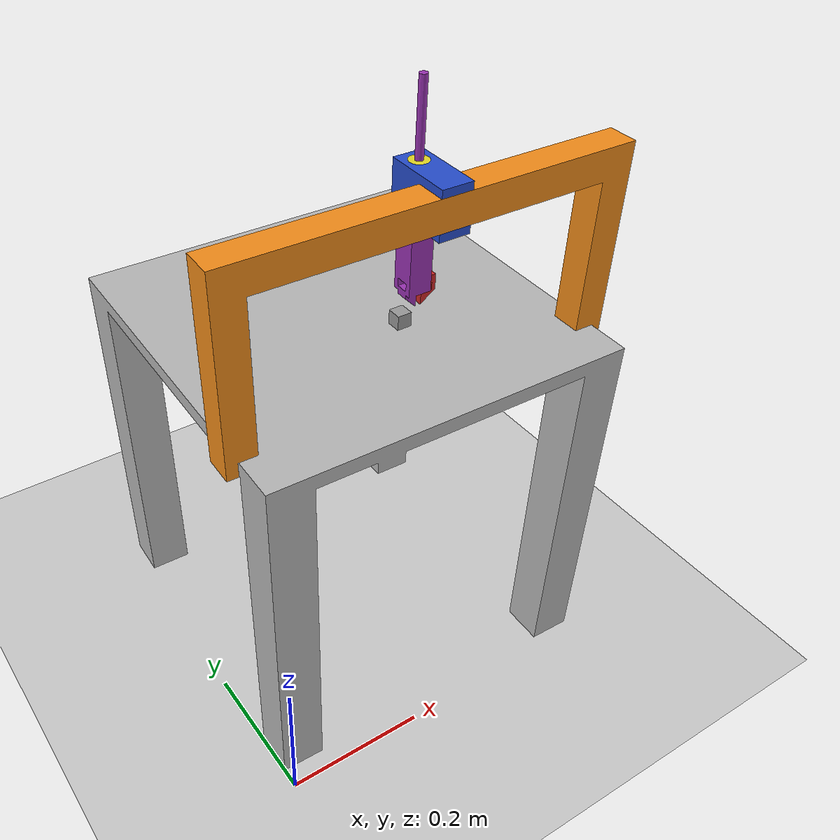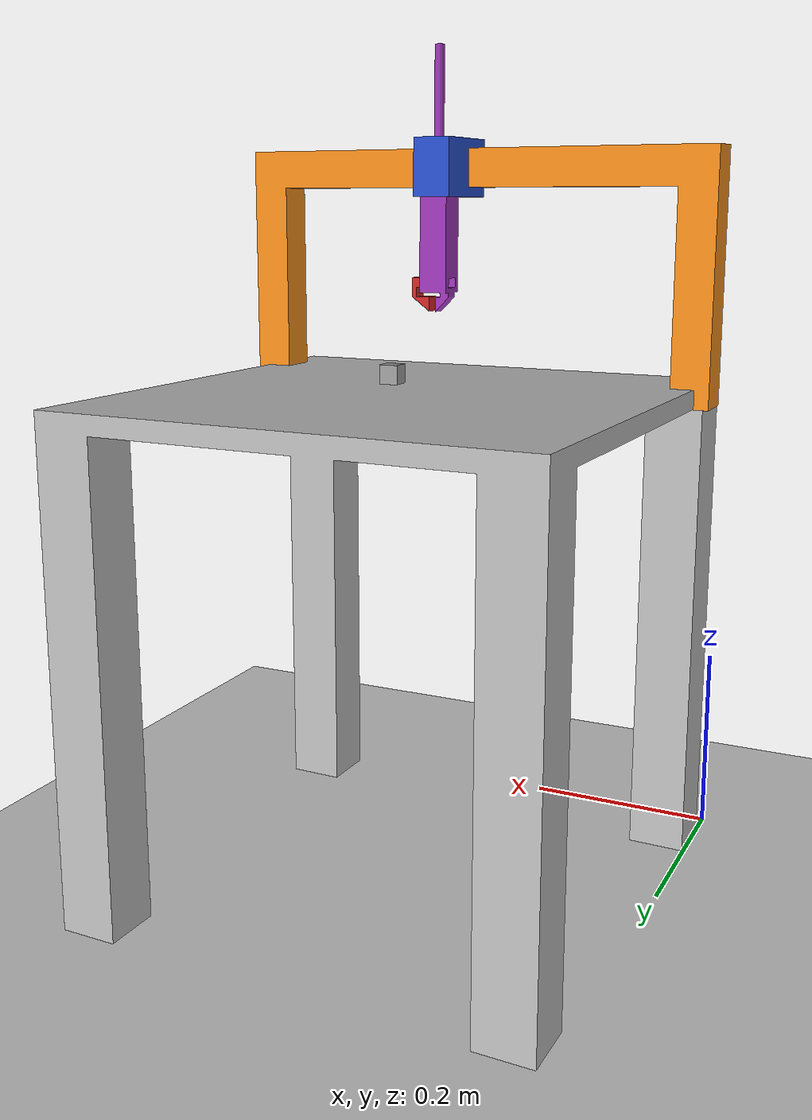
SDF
<sdf version="1.6">
 <world name="default">
  <light name="sun" type="directional">
   <pose>0 0 10 0 -0 0</pose>
   <diffuse>0.8 0.8 0.8 1</diffuse>
   <specular>0.1 0.1 0.1 1</specular>
   <attenuation>
    <range>1000</range>
    <constant>0.9</constant>
    <linear>0.01</linear>
    <quadratic>0.001</quadratic>
   </attenuation>
   <direction>-0.5 0.5 -1</direction>
  </light>
  <model name="ground_plane">
   <static>1</static>
   <link name="link">
    <collision name="collision">
     <geometry><plane><normal>0 0 1</normal><size>100 100</size></plane></geometry>
     <surface><friction><ode><mu>100</mu><mu2>50</mu2></ode></friction></surface>
    </collision>
    <visual name="visual">
     <cast_shadows>0</cast_shadows>
     <geometry><plane><normal>0 0 1</normal><size>100 100</size></plane></geometry>
     <material>
      <script><uri>file://media/materials/scripts/gazebo.material</uri><name>Gazebo/Grey</name></script>
     </material>
    </visual>
   </link>
  </model>
  <gravity>0 0 -9.8</gravity>
  <magnetic_field>6e-06 2.3e-05 -4.2e-05</magnetic_field>
  <atmosphere type="adiabatic"/>
  <physics name="default_physics" default="0" type="ode">
   <max_step_size>0.001</max_step_size>
   <real_time_factor>1</real_time_factor>
   <real_time_update_rate>1000</real_time_update_rate>
  </physics>
  <scene><ambient>0.4 0.4 0.4 1</ambient><background>0.7 0.7 0.7 1</background><shadows>1</shadows></scene>
  <spherical_coordinates>
   <surface_model>EARTH_WGS84</surface_model>
   <latitude_deg>0</latitude_deg>
   <longitude_deg>0</longitude_deg>
   <elevation>0</elevation>
   <heading_deg>0</heading_deg>
  </spherical_coordinates>
  <model name="robot">
   <link name="base_link">
    <inertial>
     <pose>0.249025 0.288536 0.424096 0 -0 0</pose>
     <mass>1200.2</mass>
     <inertia><ixx>0</ixx><ixy>0</ixy><ixz>0</ixz><iyy>0</iyy><iyz>0</iyz><izz>0</izz></inertia>
    </inertial>
    <collision name="base_link_collision">
     <geometry>
      <mesh><scale>1 1 1</scale><uri>/home/amin/robot_project/src/robot_sim/meshes/base_link.STL</uri></mesh>
     </geometry>
     <surface>
      <friction>
       <ode><mu>10</mu><mu2>10</mu2><fdir1>0 0 0</fdir1><slip1>0</slip1><slip2>0</slip2></ode>
       <torsional>
        <coefficient>1</coefficient>
        <patch_radius>0</patch_radius>
        <surface_radius>0</surface_radius>
        <use_patch_radius>1</use_patch_radius>
        <ode><slip>0</slip></ode>
       </torsional>
      </friction>
      <bounce><restitution_coefficient>0</restitution_coefficient><threshold>1e+06</threshold></bounce>
      <contact>
       <collide_without_contact>0</collide_without_contact>
       <collide_without_contact_bitmask>1</collide_without_contact_bitmask>
       <collide_bitmask>1</collide_bitmask>
       <ode>
        <soft_cfm>0</soft_cfm>
        <soft_erp>0.2</soft_erp>
        <kp>1e+13</kp>
        <kd>1</kd>
        <max_vel>0.01</max_vel>
        <min_depth>0</min_depth>
       </ode>
       <bullet>
        <split_impulse>1</split_impulse>
        <split_impulse_penetration_threshold>-0.01</split_impulse_penetration_threshold>
        <soft_cfm>0</soft_cfm>
        <soft_erp>0.2</soft_erp>
        <kp>1e+13</kp>
        <kd>1</kd>
       </bullet>
      </contact>
     </surface>
    </collision>
    <visual name="base_link_visual">
     <geometry>
      <mesh><scale>1 1 1</scale><uri>/home/amin/robot_project/src/robot_sim/meshes/base_link.STL</uri></mesh>
     </geometry>
    </visual>
   </link>
   <link name="p1">
    <pose>0.249025 0.1 0.5 0 -0 0</pose>
    <inertial>
     <pose>0 0.185556 0.02 0 -0 0</pose>
     <mass>1.512</mass>
     <inertia><ixx>0</ixx><ixy>0</ixy><ixz>0</ixz><iyy>0</iyy><iyz>0</iyz><izz>0</izz></inertia>
    </inertial>
    <collision name="p1_collision">
     <geometry>
      <mesh><scale>1 1 1</scale><uri>/home/amin/robot_project/src/robot_sim/meshes/p1.STL</uri></mesh>
     </geometry>
    </collision>
    <visual name="p1_visual">
     <geometry>
      <mesh><scale>1 1 1</scale><uri>/home/amin/robot_project/src/robot_sim/meshes/p1.STL</uri></mesh>
     </geometry>
     <material>
      <script><name>Gazebo/Orange</name><uri>file://media/materials/scripts/gazebo.material</uri></script>
     </material>
    </visual>
   </link>
   <joint name="j1" type="prismatic">
    <child>p1</child>
    <parent>base_link</parent>
    <axis>
     <xyz>0 1 0</xyz>
     <limit><lower>-0.05</lower><upper>0.4</upper><effort>1000</effort><velocity>0.5</velocity></limit>
     <dynamics><spring_reference>0</spring_reference><spring_stiffness>0</spring_stiffness></dynamics>
     <use_parent_model_frame>1</use_parent_model_frame>
    </axis>
   </joint>
   <link name="p2">
    <pose>0.249025 0.06 0.71 0 -0 3.1415</pose>
    <inertial>
     <pose>-0.02 0.03 0.052048 0 -0 0</pose>
     <mass>0.122548</mass>
     <inertia><ixx>0</ixx><ixy>0</ixy><ixz>0</ixz><iyy>0</iyy><iyz>0</iyz><izz>0</izz></inertia>
    </inertial>
    <collision name="p2_collision">
     <geometry>
      <mesh><scale>1 1 1</scale><uri>/home/amin/robot_project/src/robot_sim/meshes/p2.STL</uri></mesh>
     </geometry>
    </collision>
    <visual name="p2_visual">
     <geometry>
      <mesh><scale>1 1 1</scale><uri>/home/amin/robot_project/src/robot_sim/meshes/p2.STL</uri></mesh>
     </geometry>
     <material>
      <script><name>Gazebo/Blue</name><uri>file://media/materials/scripts/gazebo.material</uri></script>
     </material>
    </visual>
   </link>
   <joint name="j2" type="prismatic">
    <child>p2</child>
    <parent>p1</parent>
    <axis>
     <xyz>-1 9.3e-05 0</xyz>
     <limit><lower>-0.23</lower><upper>0.27</upper><effort>1000</effort><velocity>0.5</velocity></limit>
     <dynamics><spring_reference>0</spring_reference><spring_stiffness>0</spring_stiffness></dynamics>
     <use_parent_model_frame>1</use_parent_model_frame>
    </axis>
   </joint>
   <link name="p3">
    <pose>0.269032 0.129998 0.75 -0 1.57 3.1415</pose>
    <inertial>
     <pose>0 -0.031069 0.000105 0 -0 0</pose>
     <mass>0.161431</mass>
     <inertia><ixx>0</ixx><ixy>0</ixy><ixz>0</ixz><iyy>0</iyy><iyz>0</iyz><izz>0</izz></inertia>
    </inertial>
    <collision name="p3_collision">
     <geometry>
      <mesh><scale>1 1 1</scale><uri>/home/amin/robot_project/src/robot_sim/meshes/p3.STL</uri></mesh>
     </geometry>
    </collision>
    <visual name="p3_visual">
     <pose>0.04 0 0 0 -0 1.57</pose>
     <geometry>
      <mesh><scale>1 1 1</scale><uri>/home/amin/robot_project/src/robot_sim/meshes/p3.STL</uri></mesh>
     </geometry>
     <material>
      <script><name>Gazebo/Yellow</name><uri>file://media/materials/scripts/gazebo.material</uri></script>
     </material>
    </visual>
   </link>
   <joint name="j3" type="revolute">
    <child>p3</child>
    <parent>p2</parent>
    <axis>
     <xyz>-0.000796 0 -1</xyz>
     <limit><lower>-1e+16</lower><upper>1e+16</upper></limit>
     <dynamics><spring_reference>0</spring_reference><spring_stiffness>0</spring_stiffness></dynamics>
     <use_parent_model_frame>1</use_parent_model_frame>
    </axis>
   </joint>
   <link name="p4">
    <pose>0.269032 0.129998 0.75 1.57 0.000796 -1.57089</pose>
    <inertial>
     <pose>0.01378 -0.002 0.008 0 -0 0</pose>
     <mass>2</mass>
     <inertia><ixx>0</ixx><ixy>0</ixy><ixz>0</ixz><iyy>0</iyy><iyz>0</iyz><izz>0</izz></inertia>
    </inertial>
    <collision name="p4_collision">
     <geometry>
      <mesh><scale>1 1 1</scale><uri>/home/amin/robot_project/src/robot_sim/meshes/p4.STL</uri></mesh>
     </geometry>
     <surface>
      <friction>
       <ode><mu>100</mu><mu2>100</mu2><fdir1>0 0 0</fdir1><slip1>0</slip1><slip2>0</slip2></ode>
       <torsional>
        <coefficient>1</coefficient>
        <patch_radius>0</patch_radius>
        <surface_radius>0</surface_radius>
        <use_patch_radius>1</use_patch_radius>
        <ode><slip>0</slip></ode>
       </torsional>
      </friction>
      <bounce><restitution_coefficient>0</restitution_coefficient><threshold>1e+06</threshold></bounce>
      <contact>
       <collide_without_contact>0</collide_without_contact>
       <collide_without_contact_bitmask>1</collide_without_contact_bitmask>
       <collide_bitmask>1</collide_bitmask>
       <ode>
        <soft_cfm>0</soft_cfm>
        <soft_erp>0.2</soft_erp>
        <kp>1e+13</kp>
        <kd>1</kd>
        <max_vel>0.01</max_vel>
        <min_depth>0</min_depth>
       </ode>
       <bullet>
        <split_impulse>1</split_impulse>
        <split_impulse_penetration_threshold>-0.01</split_impulse_penetration_threshold>
        <soft_cfm>0</soft_cfm>
        <soft_erp>0.2</soft_erp>
        <kp>1e+13</kp>
        <kd>1</kd>
       </bullet>
      </contact>
     </surface>
    </collision>
    <visual name="p4_visual">
     <geometry>
      <mesh><scale>1 1 1</scale><uri>/home/amin/robot_project/src/robot_sim/meshes/p4.STL</uri></mesh>
     </geometry>
     <material>
      <script><name>Gazebo/Purple</name><uri>file://media/materials/scripts/gazebo.material</uri></script>
     </material>
    </visual>
   </link>
   <joint name="j4" type="prismatic">
    <child>p4</child>
    <parent>p3</parent>
    <axis>
     <xyz>-0.000796 0.000796 -0.999999</xyz>
     <limit><lower>-0.006</lower><upper>0.066</upper><effort>1000</effort><velocity>0.5</velocity></limit>
     <dynamics><spring_reference>0</spring_reference><spring_stiffness>0</spring_stiffness></dynamics>
     <use_parent_model_frame>1</use_parent_model_frame>
    </axis>
   </joint>
   <link name="p5">
    <pose>0.268926 0.138604 0.616807 1.57159 0.000797 -0.000889</pose>
    <inertial>
     <pose>0.01378 -0.002 0.008 0 -0 0</pose>
     <mass>1</mass>
     <inertia><ixx>0</ixx><ixy>0</ixy><ixz>0</ixz><iyy>0</iyy><iyz>0</iyz><izz>0</izz></inertia>
    </inertial>
    <collision name="p5_collision">
     <geometry>
      <mesh><scale>1 1 1</scale><uri>/home/amin/robot_project/src/robot_sim/meshes/p5.STL</uri></mesh>
     </geometry>
     <surface>
      <friction>
       <ode><mu>100.0</mu><mu2>100.0</mu2><fdir1>0 0 0</fdir1><slip1>0</slip1><slip2>0</slip2></ode>
       <torsional>
        <coefficient>1</coefficient>
        <patch_radius>0</patch_radius>
        <surface_radius>0</surface_radius>
        <use_patch_radius>1</use_patch_radius>
        <ode><slip>0</slip></ode>
       </torsional>
      </friction>
      <bounce><restitution_coefficient>0</restitution_coefficient><threshold>1e+06</threshold></bounce>
      <contact>
       <collide_without_contact>0</collide_without_contact>
       <collide_without_contact_bitmask>1</collide_without_contact_bitmask>
       <collide_bitmask>1</collide_bitmask>
       <ode>
        <soft_cfm>0</soft_cfm>
        <soft_erp>0.2</soft_erp>
        <kp>1e+13</kp>
        <kd>1</kd>
        <max_vel>0.01</max_vel>
        <min_depth>0</min_depth>
       </ode>
       <bullet>
        <split_impulse>1</split_impulse>
        <split_impulse_penetration_threshold>-0.01</split_impulse_penetration_threshold>
        <soft_cfm>0</soft_cfm>
        <soft_erp>0.2</soft_erp>
        <kp>1e+13</kp>
        <kd>1</kd>
       </bullet>
      </contact>
     </surface>
    </collision>
    <visual name="p5_visual">
     <geometry>
      <mesh><scale>1 1 1</scale><uri>/home/amin/robot_project/src/robot_sim/meshes/p5.STL</uri></mesh>
     </geometry>
     <material>
      <script><name>Gazebo/Red</name><uri>file://media/materials/scripts/gazebo.material</uri></script>
     </material>
    </visual>
   </link>
   <joint name="j5" type="prismatic">
    <child>p5</child>
    <parent>p4</parent>
    <axis>
     <xyz>-0.999999 0.000889 0.000797</xyz>
     <limit><lower>-0.02</lower><upper>0.01</upper><effort>10</effort><velocity>0.5</velocity></limit>
     <dynamics><spring_reference>0</spring_reference><spring_stiffness>0</spring_stiffness></dynamics>
     <use_parent_model_frame>1</use_parent_model_frame>
    </axis>
   </joint>
   <static>0</static>
   <plugin name="gazebo_ros_control" filename="libgazebo_ros_control.so">
    <robotNamespace>/rrbot</robotNamespace>
   </plugin>
   <pose>0.000334 0.027722 -2e-06 -1e-06 -7e-06 -0.024885</pose>
  </model>
  <model name="smallbox">
   <link name="link">
    <inertial>
     <mass>0.01</mass>
     <inertia><ixx>0.001</ixx><ixy>0</ixy><ixz>0</ixz><iyy>0.001</iyy><iyz>0</iyz><izz>0.001</izz></inertia>
    </inertial>
    <visual name="visual">
     <geometry><box><size>0.02 0.02 0.02</size></box></geometry>
     <material>
      <script><name>Gazebo/Grey</name><uri>file://media/materials/scripts/gazebo.material</uri></script>
      <ambient>0.3 0.3 0.3 1</ambient>
      <diffuse>0.7 0.7 0.7 1</diffuse>
      <specular>0.01 0.01 0.01 1</specular>
      <emissive>0 0 0 1</emissive>
      <shader type="vertex"><normal_map>__default__</normal_map></shader>
     </material>
    </visual>
    <collision name="collision">
     <geometry><box><size>0.02 0.02 0.02</size></box></geometry>
     <surface>
      <friction>
       <ode><mu>100</mu><mu2>100</mu2><fdir1>0 0 0</fdir1><slip1>0</slip1><slip2>0</slip2></ode>
       <torsional>
        <coefficient>1</coefficient>
        <patch_radius>0</patch_radius>
        <surface_radius>0</surface_radius>
        <use_patch_radius>1</use_patch_radius>
        <ode><slip>0</slip></ode>
       </torsional>
      </friction>
      <bounce><restitution_coefficient>0</restitution_coefficient><threshold>1e+06</threshold></bounce>
      <contact>
       <collide_without_contact>0</collide_without_contact>
       <collide_without_contact_bitmask>1</collide_without_contact_bitmask>
       <collide_bitmask>1</collide_bitmask>
       <ode>
        <soft_cfm>0</soft_cfm>
        <soft_erp>0.2</soft_erp>
        <kp>1e+13</kp>
        <kd>1</kd>
        <max_vel>0</max_vel>
        <min_depth>0</min_depth>
       </ode>
       <bullet>
        <split_impulse>1</split_impulse>
        <split_impulse_penetration_threshold>-0.01</split_impulse_penetration_threshold>
        <soft_cfm>0</soft_cfm>
        <soft_erp>0.2</soft_erp>
        <kp>1e+13</kp>
        <kd>1</kd>
       </bullet>
      </contact>
     </surface>
    </collision>
   </link>
   <static>0</static>
   <pose>0.29931 0.208249 0.530029 -0.000321 0.002599 -0.001662</pose>
  </model>
 </world>
</sdf>
